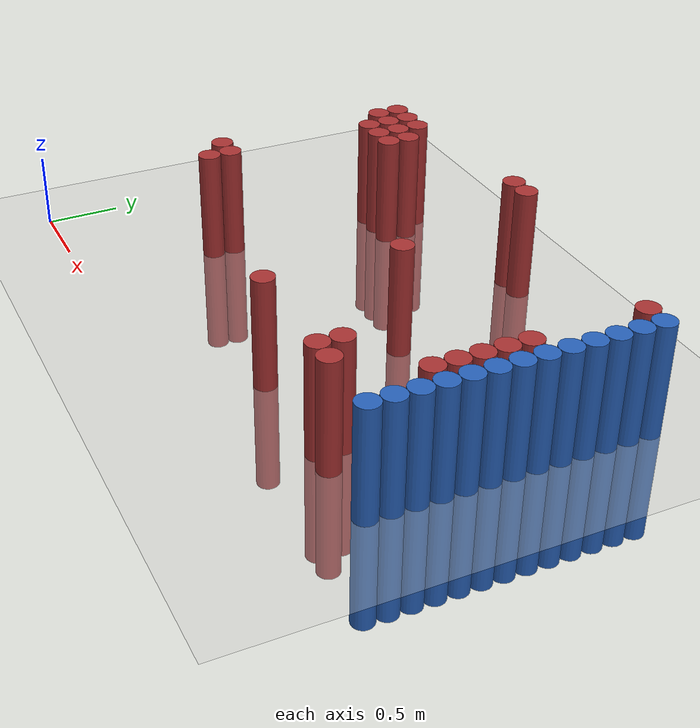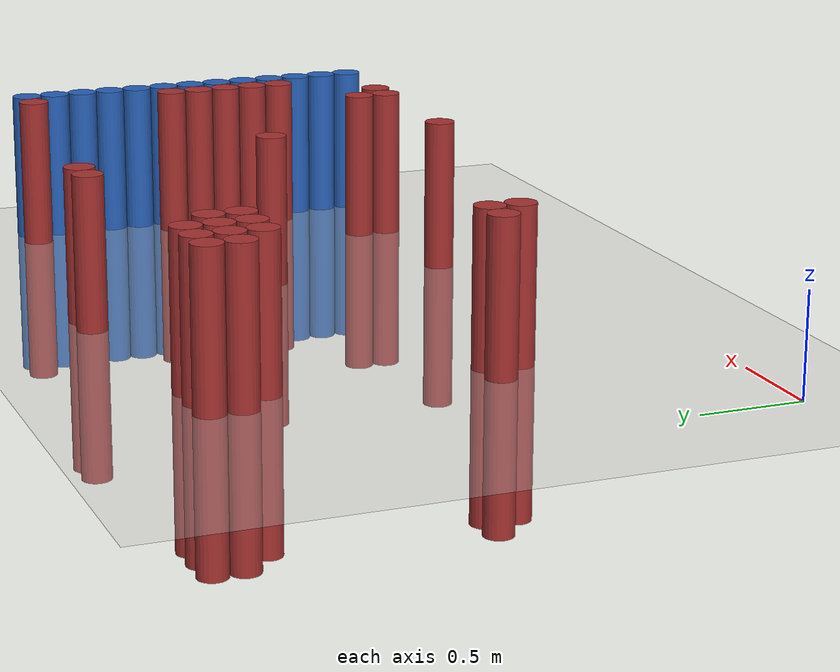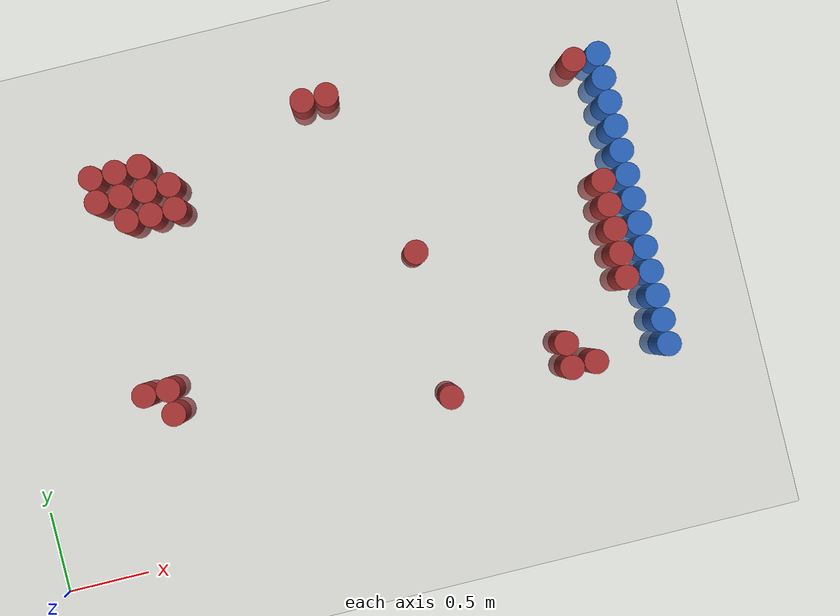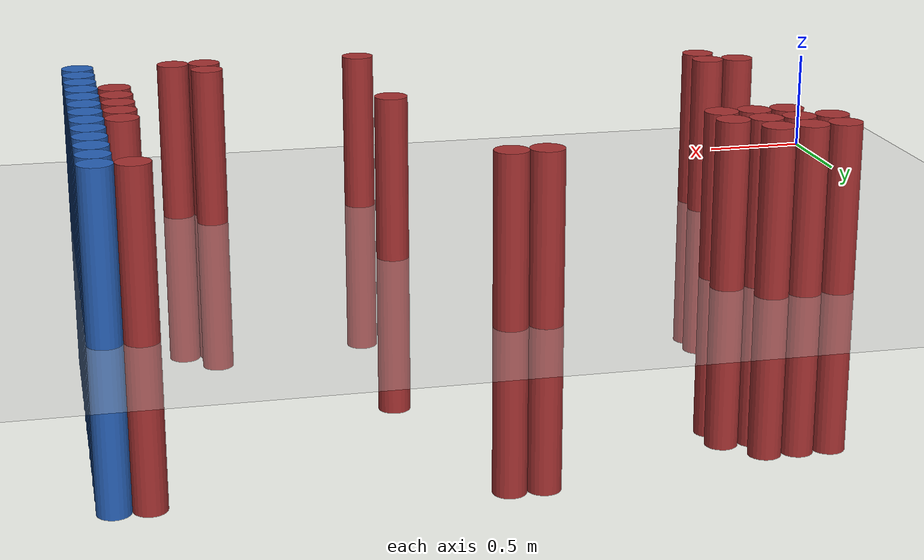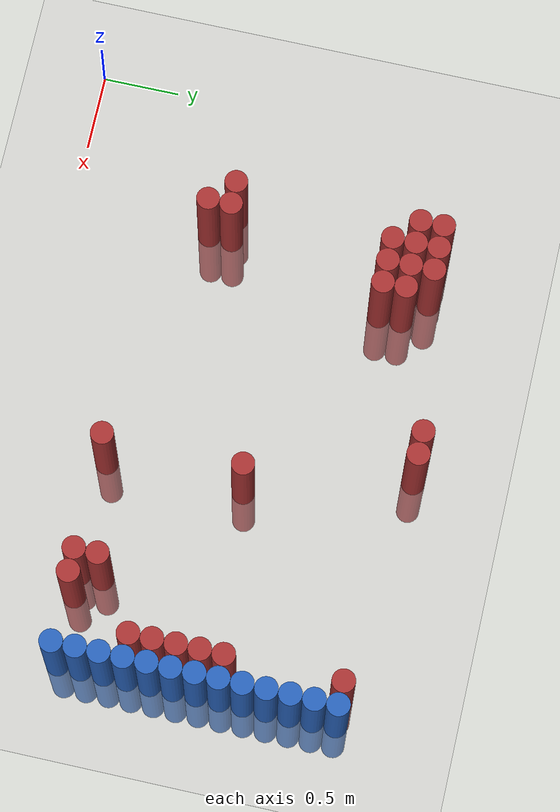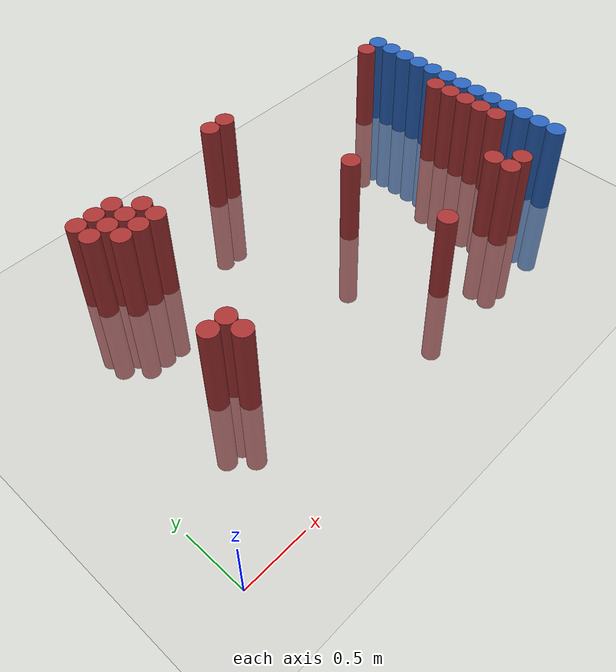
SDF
<sdf version="1.6">
 <world name="default">
  <model name="ground_plane">
   <static>1</static>
   <link name="link">
    <collision name="collision">
     <geometry><plane><normal>0 0 1</normal><size>100 100</size></plane></geometry>
     <surface><friction><ode><mu>100</mu><mu2>50</mu2></ode></friction></surface>
    </collision>
    <visual name="visual">
     <cast_shadows>0</cast_shadows>
     <geometry><plane><normal>0 0 1</normal><size>100 100</size></plane></geometry>
     <material>
      <script><uri>file://media/materials/scripts/gazebo.material</uri><name>Gazebo/Grey</name></script>
     </material>
    </visual>
   </link>
  </model>
  <model name="unit_cylinder_124">
   <static>1</static>
   <pose>3.925000 0.775000 0.000000 0.000000 0.000000 0.000000</pose>
   <link name="link">
    <inertial>
     <mass>1</mass>
     <inertia><ixx>0.145833</ixx><ixy>0</ixy><ixz>0</ixz><iyy>0.145833</iyy><iyz>0</iyz><izz>0.125</izz></inertia>
    </inertial>
    <collision name="collision">
     <geometry><cylinder><radius>0.075000</radius><length>1.5</length></cylinder></geometry>
    </collision>
    <visual name="visual">
     <geometry><cylinder><radius>0.075000</radius><length>1.5</length></cylinder></geometry>
     <material>
      <ambient>0.152000 0.379000 0.720000 1</ambient>
      <diffuse>0.152000 0.379000 0.720000 1</diffuse>
     </material>
     <material>
      <script><name>Gazebo/Grey</name><uri>file://media/materials/scripts/gazebo.material</uri></script>
     </material>
    </visual>
   </link>
  </model>
  <model name="unit_cylinder_126">
   <static>1</static>
   <pose>3.925000 0.925000 0.000000 0.000000 0.000000 0.000000</pose>
   <link name="link">
    <inertial>
     <mass>1</mass>
     <inertia><ixx>0.145833</ixx><ixy>0</ixy><ixz>0</ixz><iyy>0.145833</iyy><iyz>0</iyz><izz>0.125</izz></inertia>
    </inertial>
    <collision name="collision">
     <geometry><cylinder><radius>0.075000</radius><length>1.5</length></cylinder></geometry>
    </collision>
    <visual name="visual">
     <geometry><cylinder><radius>0.075000</radius><length>1.5</length></cylinder></geometry>
     <material>
      <ambient>0.152000 0.379000 0.720000 1</ambient>
      <diffuse>0.152000 0.379000 0.720000 1</diffuse>
     </material>
     <material>
      <script><name>Gazebo/Grey</name><uri>file://media/materials/scripts/gazebo.material</uri></script>
     </material>
    </visual>
   </link>
  </model>
  <model name="unit_cylinder_128">
   <static>1</static>
   <pose>3.925000 1.075000 0.000000 0.000000 0.000000 0.000000</pose>
   <link name="link">
    <inertial>
     <mass>1</mass>
     <inertia><ixx>0.145833</ixx><ixy>0</ixy><ixz>0</ixz><iyy>0.145833</iyy><iyz>0</iyz><izz>0.125</izz></inertia>
    </inertial>
    <collision name="collision">
     <geometry><cylinder><radius>0.075000</radius><length>1.5</length></cylinder></geometry>
    </collision>
    <visual name="visual">
     <geometry><cylinder><radius>0.075000</radius><length>1.5</length></cylinder></geometry>
     <material>
      <ambient>0.152000 0.379000 0.720000 1</ambient>
      <diffuse>0.152000 0.379000 0.720000 1</diffuse>
     </material>
     <material>
      <script><name>Gazebo/Grey</name><uri>file://media/materials/scripts/gazebo.material</uri></script>
     </material>
    </visual>
   </link>
  </model>
  <model name="unit_cylinder_130">
   <static>1</static>
   <pose>3.925000 1.225000 0.000000 0.000000 0.000000 0.000000</pose>
   <link name="link">
    <inertial>
     <mass>1</mass>
     <inertia><ixx>0.145833</ixx><ixy>0</ixy><ixz>0</ixz><iyy>0.145833</iyy><iyz>0</iyz><izz>0.125</izz></inertia>
    </inertial>
    <collision name="collision">
     <geometry><cylinder><radius>0.075000</radius><length>1.5</length></cylinder></geometry>
    </collision>
    <visual name="visual">
     <geometry><cylinder><radius>0.075000</radius><length>1.5</length></cylinder></geometry>
     <material>
      <ambient>0.152000 0.379000 0.720000 1</ambient>
      <diffuse>0.152000 0.379000 0.720000 1</diffuse>
     </material>
     <material>
      <script><name>Gazebo/Grey</name><uri>file://media/materials/scripts/gazebo.material</uri></script>
     </material>
    </visual>
   </link>
  </model>
  <model name="unit_cylinder_132">
   <static>1</static>
   <pose>3.925000 1.375000 0.000000 0.000000 0.000000 0.000000</pose>
   <link name="link">
    <inertial>
     <mass>1</mass>
     <inertia><ixx>0.145833</ixx><ixy>0</ixy><ixz>0</ixz><iyy>0.145833</iyy><iyz>0</iyz><izz>0.125</izz></inertia>
    </inertial>
    <collision name="collision">
     <geometry><cylinder><radius>0.075000</radius><length>1.5</length></cylinder></geometry>
    </collision>
    <visual name="visual">
     <geometry><cylinder><radius>0.075000</radius><length>1.5</length></cylinder></geometry>
     <material>
      <ambient>0.152000 0.379000 0.720000 1</ambient>
      <diffuse>0.152000 0.379000 0.720000 1</diffuse>
     </material>
     <material>
      <script><name>Gazebo/Grey</name><uri>file://media/materials/scripts/gazebo.material</uri></script>
     </material>
    </visual>
   </link>
  </model>
  <model name="unit_cylinder_134">
   <static>1</static>
   <pose>3.925000 1.525000 0.000000 0.000000 0.000000 0.000000</pose>
   <link name="link">
    <inertial>
     <mass>1</mass>
     <inertia><ixx>0.145833</ixx><ixy>0</ixy><ixz>0</ixz><iyy>0.145833</iyy><iyz>0</iyz><izz>0.125</izz></inertia>
    </inertial>
    <collision name="collision">
     <geometry><cylinder><radius>0.075000</radius><length>1.5</length></cylinder></geometry>
    </collision>
    <visual name="visual">
     <geometry><cylinder><radius>0.075000</radius><length>1.5</length></cylinder></geometry>
     <material>
      <ambient>0.152000 0.379000 0.720000 1</ambient>
      <diffuse>0.152000 0.379000 0.720000 1</diffuse>
     </material>
     <material>
      <script><name>Gazebo/Grey</name><uri>file://media/materials/scripts/gazebo.material</uri></script>
     </material>
    </visual>
   </link>
  </model>
  <model name="unit_cylinder_136">
   <static>1</static>
   <pose>3.925000 1.675000 0.000000 0.000000 0.000000 0.000000</pose>
   <link name="link">
    <inertial>
     <mass>1</mass>
     <inertia><ixx>0.145833</ixx><ixy>0</ixy><ixz>0</ixz><iyy>0.145833</iyy><iyz>0</iyz><izz>0.125</izz></inertia>
    </inertial>
    <collision name="collision">
     <geometry><cylinder><radius>0.075000</radius><length>1.5</length></cylinder></geometry>
    </collision>
    <visual name="visual">
     <geometry><cylinder><radius>0.075000</radius><length>1.5</length></cylinder></geometry>
     <material>
      <ambient>0.152000 0.379000 0.720000 1</ambient>
      <diffuse>0.152000 0.379000 0.720000 1</diffuse>
     </material>
     <material>
      <script><name>Gazebo/Grey</name><uri>file://media/materials/scripts/gazebo.material</uri></script>
     </material>
    </visual>
   </link>
  </model>
  <model name="unit_cylinder_138">
   <static>1</static>
   <pose>3.925000 1.825000 0.000000 0.000000 0.000000 0.000000</pose>
   <link name="link">
    <inertial>
     <mass>1</mass>
     <inertia><ixx>0.145833</ixx><ixy>0</ixy><ixz>0</ixz><iyy>0.145833</iyy><iyz>0</iyz><izz>0.125</izz></inertia>
    </inertial>
    <collision name="collision">
     <geometry><cylinder><radius>0.075000</radius><length>1.5</length></cylinder></geometry>
    </collision>
    <visual name="visual">
     <geometry><cylinder><radius>0.075000</radius><length>1.5</length></cylinder></geometry>
     <material>
      <ambient>0.152000 0.379000 0.720000 1</ambient>
      <diffuse>0.152000 0.379000 0.720000 1</diffuse>
     </material>
     <material>
      <script><name>Gazebo/Grey</name><uri>file://media/materials/scripts/gazebo.material</uri></script>
     </material>
    </visual>
   </link>
  </model>
  <model name="unit_cylinder_140">
   <static>1</static>
   <pose>3.925000 1.975000 0.000000 0.000000 0.000000 0.000000</pose>
   <link name="link">
    <inertial>
     <mass>1</mass>
     <inertia><ixx>0.145833</ixx><ixy>0</ixy><ixz>0</ixz><iyy>0.145833</iyy><iyz>0</iyz><izz>0.125</izz></inertia>
    </inertial>
    <collision name="collision">
     <geometry><cylinder><radius>0.075000</radius><length>1.5</length></cylinder></geometry>
    </collision>
    <visual name="visual">
     <geometry><cylinder><radius>0.075000</radius><length>1.5</length></cylinder></geometry>
     <material>
      <ambient>0.152000 0.379000 0.720000 1</ambient>
      <diffuse>0.152000 0.379000 0.720000 1</diffuse>
     </material>
     <material>
      <script><name>Gazebo/Grey</name><uri>file://media/materials/scripts/gazebo.material</uri></script>
     </material>
    </visual>
   </link>
  </model>
  <model name="unit_cylinder_142">
   <static>1</static>
   <pose>3.925000 2.125000 0.000000 0.000000 0.000000 0.000000</pose>
   <link name="link">
    <inertial>
     <mass>1</mass>
     <inertia><ixx>0.145833</ixx><ixy>0</ixy><ixz>0</ixz><iyy>0.145833</iyy><iyz>0</iyz><izz>0.125</izz></inertia>
    </inertial>
    <collision name="collision">
     <geometry><cylinder><radius>0.075000</radius><length>1.5</length></cylinder></geometry>
    </collision>
    <visual name="visual">
     <geometry><cylinder><radius>0.075000</radius><length>1.5</length></cylinder></geometry>
     <material>
      <ambient>0.152000 0.379000 0.720000 1</ambient>
      <diffuse>0.152000 0.379000 0.720000 1</diffuse>
     </material>
     <material>
      <script><name>Gazebo/Grey</name><uri>file://media/materials/scripts/gazebo.material</uri></script>
     </material>
    </visual>
   </link>
  </model>
  <model name="unit_cylinder_144">
   <static>1</static>
   <pose>3.925000 2.275000 0.000000 0.000000 0.000000 0.000000</pose>
   <link name="link">
    <inertial>
     <mass>1</mass>
     <inertia><ixx>0.145833</ixx><ixy>0</ixy><ixz>0</ixz><iyy>0.145833</iyy><iyz>0</iyz><izz>0.125</izz></inertia>
    </inertial>
    <collision name="collision">
     <geometry><cylinder><radius>0.075000</radius><length>1.5</length></cylinder></geometry>
    </collision>
    <visual name="visual">
     <geometry><cylinder><radius>0.075000</radius><length>1.5</length></cylinder></geometry>
     <material>
      <ambient>0.152000 0.379000 0.720000 1</ambient>
      <diffuse>0.152000 0.379000 0.720000 1</diffuse>
     </material>
     <material>
      <script><name>Gazebo/Grey</name><uri>file://media/materials/scripts/gazebo.material</uri></script>
     </material>
    </visual>
   </link>
  </model>
  <model name="unit_cylinder_146">
   <static>1</static>
   <pose>3.925000 2.425000 0.000000 0.000000 0.000000 0.000000</pose>
   <link name="link">
    <inertial>
     <mass>1</mass>
     <inertia><ixx>0.145833</ixx><ixy>0</ixy><ixz>0</ixz><iyy>0.145833</iyy><iyz>0</iyz><izz>0.125</izz></inertia>
    </inertial>
    <collision name="collision">
     <geometry><cylinder><radius>0.075000</radius><length>1.5</length></cylinder></geometry>
    </collision>
    <visual name="visual">
     <geometry><cylinder><radius>0.075000</radius><length>1.5</length></cylinder></geometry>
     <material>
      <ambient>0.152000 0.379000 0.720000 1</ambient>
      <diffuse>0.152000 0.379000 0.720000 1</diffuse>
     </material>
     <material>
      <script><name>Gazebo/Grey</name><uri>file://media/materials/scripts/gazebo.material</uri></script>
     </material>
    </visual>
   </link>
  </model>
  <model name="unit_cylinder_390">
   <static>1</static>
   <pose>0.775000 1.075000 0.000000 0.000000 0.000000 0.000000</pose>
   <link name="link">
    <inertial>
     <mass>1</mass>
     <inertia><ixx>0.145833</ixx><ixy>0</ixy><ixz>0</ixz><iyy>0.145833</iyy><iyz>0</iyz><izz>0.125</izz></inertia>
    </inertial>
    <collision name="collision">
     <geometry><cylinder><radius>0.075000</radius><length>1.5</length></cylinder></geometry>
    </collision>
    <visual name="visual">
     <geometry><cylinder><radius>0.075000</radius><length>1.5</length></cylinder></geometry>
     <material>
      <ambient>0.648000 0.192000 0.192000 1</ambient>
      <diffuse>0.648000 0.192000 0.192000 1</diffuse>
     </material>
     <material>
      <script><name>Gazebo/Grey</name><uri>file://media/materials/scripts/gazebo.material</uri></script>
     </material>
    </visual>
   </link>
  </model>
  <model name="unit_cylinder_391">
   <static>1</static>
   <pose>0.775000 2.275000 0.000000 0.000000 0.000000 0.000000</pose>
   <link name="link">
    <inertial>
     <mass>1</mass>
     <inertia><ixx>0.145833</ixx><ixy>0</ixy><ixz>0</ixz><iyy>0.145833</iyy><iyz>0</iyz><izz>0.125</izz></inertia>
    </inertial>
    <collision name="collision">
     <geometry><cylinder><radius>0.075000</radius><length>1.5</length></cylinder></geometry>
    </collision>
    <visual name="visual">
     <geometry><cylinder><radius>0.075000</radius><length>1.5</length></cylinder></geometry>
     <material>
      <ambient>0.648000 0.192000 0.192000 1</ambient>
      <diffuse>0.648000 0.192000 0.192000 1</diffuse>
     </material>
     <material>
      <script><name>Gazebo/Grey</name><uri>file://media/materials/scripts/gazebo.material</uri></script>
     </material>
    </visual>
   </link>
  </model>
  <model name="unit_cylinder_392">
   <static>1</static>
   <pose>0.775000 2.425000 0.000000 0.000000 0.000000 0.000000</pose>
   <link name="link">
    <inertial>
     <mass>1</mass>
     <inertia><ixx>0.145833</ixx><ixy>0</ixy><ixz>0</ixz><iyy>0.145833</iyy><iyz>0</iyz><izz>0.125</izz></inertia>
    </inertial>
    <collision name="collision">
     <geometry><cylinder><radius>0.075000</radius><length>1.5</length></cylinder></geometry>
    </collision>
    <visual name="visual">
     <geometry><cylinder><radius>0.075000</radius><length>1.5</length></cylinder></geometry>
     <material>
      <ambient>0.648000 0.192000 0.192000 1</ambient>
      <diffuse>0.648000 0.192000 0.192000 1</diffuse>
     </material>
     <material>
      <script><name>Gazebo/Grey</name><uri>file://media/materials/scripts/gazebo.material</uri></script>
     </material>
    </visual>
   </link>
  </model>
  <model name="unit_cylinder_397">
   <static>1</static>
   <pose>0.925000 0.925000 0.000000 0.000000 0.000000 0.000000</pose>
   <link name="link">
    <inertial>
     <mass>1</mass>
     <inertia><ixx>0.145833</ixx><ixy>0</ixy><ixz>0</ixz><iyy>0.145833</iyy><iyz>0</iyz><izz>0.125</izz></inertia>
    </inertial>
    <collision name="collision">
     <geometry><cylinder><radius>0.075000</radius><length>1.5</length></cylinder></geometry>
    </collision>
    <visual name="visual">
     <geometry><cylinder><radius>0.075000</radius><length>1.5</length></cylinder></geometry>
     <material>
      <ambient>0.648000 0.192000 0.192000 1</ambient>
      <diffuse>0.648000 0.192000 0.192000 1</diffuse>
     </material>
     <material>
      <script><name>Gazebo/Grey</name><uri>file://media/materials/scripts/gazebo.material</uri></script>
     </material>
    </visual>
   </link>
  </model>
  <model name="unit_cylinder_398">
   <static>1</static>
   <pose>0.925000 1.075000 0.000000 0.000000 0.000000 0.000000</pose>
   <link name="link">
    <inertial>
     <mass>1</mass>
     <inertia><ixx>0.145833</ixx><ixy>0</ixy><ixz>0</ixz><iyy>0.145833</iyy><iyz>0</iyz><izz>0.125</izz></inertia>
    </inertial>
    <collision name="collision">
     <geometry><cylinder><radius>0.075000</radius><length>1.5</length></cylinder></geometry>
    </collision>
    <visual name="visual">
     <geometry><cylinder><radius>0.075000</radius><length>1.5</length></cylinder></geometry>
     <material>
      <ambient>0.648000 0.192000 0.192000 1</ambient>
      <diffuse>0.648000 0.192000 0.192000 1</diffuse>
     </material>
     <material>
      <script><name>Gazebo/Grey</name><uri>file://media/materials/scripts/gazebo.material</uri></script>
     </material>
    </visual>
   </link>
  </model>
  <model name="unit_cylinder_399">
   <static>1</static>
   <pose>0.925000 2.125000 0.000000 0.000000 0.000000 0.000000</pose>
   <link name="link">
    <inertial>
     <mass>1</mass>
     <inertia><ixx>0.145833</ixx><ixy>0</ixy><ixz>0</ixz><iyy>0.145833</iyy><iyz>0</iyz><izz>0.125</izz></inertia>
    </inertial>
    <collision name="collision">
     <geometry><cylinder><radius>0.075000</radius><length>1.5</length></cylinder></geometry>
    </collision>
    <visual name="visual">
     <geometry><cylinder><radius>0.075000</radius><length>1.5</length></cylinder></geometry>
     <material>
      <ambient>0.648000 0.192000 0.192000 1</ambient>
      <diffuse>0.648000 0.192000 0.192000 1</diffuse>
     </material>
     <material>
      <script><name>Gazebo/Grey</name><uri>file://media/materials/scripts/gazebo.material</uri></script>
     </material>
    </visual>
   </link>
  </model>
  <model name="unit_cylinder_400">
   <static>1</static>
   <pose>0.925000 2.275000 0.000000 0.000000 0.000000 0.000000</pose>
   <link name="link">
    <inertial>
     <mass>1</mass>
     <inertia><ixx>0.145833</ixx><ixy>0</ixy><ixz>0</ixz><iyy>0.145833</iyy><iyz>0</iyz><izz>0.125</izz></inertia>
    </inertial>
    <collision name="collision">
     <geometry><cylinder><radius>0.075000</radius><length>1.5</length></cylinder></geometry>
    </collision>
    <visual name="visual">
     <geometry><cylinder><radius>0.075000</radius><length>1.5</length></cylinder></geometry>
     <material>
      <ambient>0.648000 0.192000 0.192000 1</ambient>
      <diffuse>0.648000 0.192000 0.192000 1</diffuse>
     </material>
     <material>
      <script><name>Gazebo/Grey</name><uri>file://media/materials/scripts/gazebo.material</uri></script>
     </material>
    </visual>
   </link>
  </model>
  <model name="unit_cylinder_401">
   <static>1</static>
   <pose>0.925000 2.425000 0.000000 0.000000 0.000000 0.000000</pose>
   <link name="link">
    <inertial>
     <mass>1</mass>
     <inertia><ixx>0.145833</ixx><ixy>0</ixy><ixz>0</ixz><iyy>0.145833</iyy><iyz>0</iyz><izz>0.125</izz></inertia>
    </inertial>
    <collision name="collision">
     <geometry><cylinder><radius>0.075000</radius><length>1.5</length></cylinder></geometry>
    </collision>
    <visual name="visual">
     <geometry><cylinder><radius>0.075000</radius><length>1.5</length></cylinder></geometry>
     <material>
      <ambient>0.648000 0.192000 0.192000 1</ambient>
      <diffuse>0.648000 0.192000 0.192000 1</diffuse>
     </material>
     <material>
      <script><name>Gazebo/Grey</name><uri>file://media/materials/scripts/gazebo.material</uri></script>
     </material>
    </visual>
   </link>
  </model>
  <model name="unit_cylinder_408">
   <static>1</static>
   <pose>1.075000 2.125000 0.000000 0.000000 0.000000 0.000000</pose>
   <link name="link">
    <inertial>
     <mass>1</mass>
     <inertia><ixx>0.145833</ixx><ixy>0</ixy><ixz>0</ixz><iyy>0.145833</iyy><iyz>0</iyz><izz>0.125</izz></inertia>
    </inertial>
    <collision name="collision">
     <geometry><cylinder><radius>0.075000</radius><length>1.5</length></cylinder></geometry>
    </collision>
    <visual name="visual">
     <geometry><cylinder><radius>0.075000</radius><length>1.5</length></cylinder></geometry>
     <material>
      <ambient>0.648000 0.192000 0.192000 1</ambient>
      <diffuse>0.648000 0.192000 0.192000 1</diffuse>
     </material>
     <material>
      <script><name>Gazebo/Grey</name><uri>file://media/materials/scripts/gazebo.material</uri></script>
     </material>
    </visual>
   </link>
  </model>
  <model name="unit_cylinder_409">
   <static>1</static>
   <pose>1.075000 2.275000 0.000000 0.000000 0.000000 0.000000</pose>
   <link name="link">
    <inertial>
     <mass>1</mass>
     <inertia><ixx>0.145833</ixx><ixy>0</ixy><ixz>0</ixz><iyy>0.145833</iyy><iyz>0</iyz><izz>0.125</izz></inertia>
    </inertial>
    <collision name="collision">
     <geometry><cylinder><radius>0.075000</radius><length>1.5</length></cylinder></geometry>
    </collision>
    <visual name="visual">
     <geometry><cylinder><radius>0.075000</radius><length>1.5</length></cylinder></geometry>
     <material>
      <ambient>0.648000 0.192000 0.192000 1</ambient>
      <diffuse>0.648000 0.192000 0.192000 1</diffuse>
     </material>
     <material>
      <script><name>Gazebo/Grey</name><uri>file://media/materials/scripts/gazebo.material</uri></script>
     </material>
    </visual>
   </link>
  </model>
  <model name="unit_cylinder_410">
   <static>1</static>
   <pose>1.075000 2.425000 0.000000 0.000000 0.000000 0.000000</pose>
   <link name="link">
    <inertial>
     <mass>1</mass>
     <inertia><ixx>0.145833</ixx><ixy>0</ixy><ixz>0</ixz><iyy>0.145833</iyy><iyz>0</iyz><izz>0.125</izz></inertia>
    </inertial>
    <collision name="collision">
     <geometry><cylinder><radius>0.075000</radius><length>1.5</length></cylinder></geometry>
    </collision>
    <visual name="visual">
     <geometry><cylinder><radius>0.075000</radius><length>1.5</length></cylinder></geometry>
     <material>
      <ambient>0.648000 0.192000 0.192000 1</ambient>
      <diffuse>0.648000 0.192000 0.192000 1</diffuse>
     </material>
     <material>
      <script><name>Gazebo/Grey</name><uri>file://media/materials/scripts/gazebo.material</uri></script>
     </material>
    </visual>
   </link>
  </model>
  <model name="unit_cylinder_419">
   <static>1</static>
   <pose>1.225000 2.125000 0.000000 0.000000 0.000000 0.000000</pose>
   <link name="link">
    <inertial>
     <mass>1</mass>
     <inertia><ixx>0.145833</ixx><ixy>0</ixy><ixz>0</ixz><iyy>0.145833</iyy><iyz>0</iyz><izz>0.125</izz></inertia>
    </inertial>
    <collision name="collision">
     <geometry><cylinder><radius>0.075000</radius><length>1.5</length></cylinder></geometry>
    </collision>
    <visual name="visual">
     <geometry><cylinder><radius>0.075000</radius><length>1.5</length></cylinder></geometry>
     <material>
      <ambient>0.648000 0.192000 0.192000 1</ambient>
      <diffuse>0.648000 0.192000 0.192000 1</diffuse>
     </material>
     <material>
      <script><name>Gazebo/Grey</name><uri>file://media/materials/scripts/gazebo.material</uri></script>
     </material>
    </visual>
   </link>
  </model>
  <model name="unit_cylinder_420">
   <static>1</static>
   <pose>1.225000 2.275000 0.000000 0.000000 0.000000 0.000000</pose>
   <link name="link">
    <inertial>
     <mass>1</mass>
     <inertia><ixx>0.145833</ixx><ixy>0</ixy><ixz>0</ixz><iyy>0.145833</iyy><iyz>0</iyz><izz>0.125</izz></inertia>
    </inertial>
    <collision name="collision">
     <geometry><cylinder><radius>0.075000</radius><length>1.5</length></cylinder></geometry>
    </collision>
    <visual name="visual">
     <geometry><cylinder><radius>0.075000</radius><length>1.5</length></cylinder></geometry>
     <material>
      <ambient>0.648000 0.192000 0.192000 1</ambient>
      <diffuse>0.648000 0.192000 0.192000 1</diffuse>
     </material>
     <material>
      <script><name>Gazebo/Grey</name><uri>file://media/materials/scripts/gazebo.material</uri></script>
     </material>
    </visual>
   </link>
  </model>
  <model name="unit_cylinder_441">
   <static>1</static>
   <pose>2.125000 2.575000 0.000000 0.000000 0.000000 0.000000</pose>
   <link name="link">
    <inertial>
     <mass>1</mass>
     <inertia><ixx>0.145833</ixx><ixy>0</ixy><ixz>0</ixz><iyy>0.145833</iyy><iyz>0</iyz><izz>0.125</izz></inertia>
    </inertial>
    <collision name="collision">
     <geometry><cylinder><radius>0.075000</radius><length>1.5</length></cylinder></geometry>
    </collision>
    <visual name="visual">
     <geometry><cylinder><radius>0.075000</radius><length>1.5</length></cylinder></geometry>
     <material>
      <ambient>0.648000 0.192000 0.192000 1</ambient>
      <diffuse>0.648000 0.192000 0.192000 1</diffuse>
     </material>
     <material>
      <script><name>Gazebo/Grey</name><uri>file://media/materials/scripts/gazebo.material</uri></script>
     </material>
    </visual>
   </link>
  </model>
  <model name="unit_cylinder_445">
   <static>1</static>
   <pose>2.275000 2.575000 0.000000 0.000000 0.000000 0.000000</pose>
   <link name="link">
    <inertial>
     <mass>1</mass>
     <inertia><ixx>0.145833</ixx><ixy>0</ixy><ixz>0</ixz><iyy>0.145833</iyy><iyz>0</iyz><izz>0.125</izz></inertia>
    </inertial>
    <collision name="collision">
     <geometry><cylinder><radius>0.075000</radius><length>1.5</length></cylinder></geometry>
    </collision>
    <visual name="visual">
     <geometry><cylinder><radius>0.075000</radius><length>1.5</length></cylinder></geometry>
     <material>
      <ambient>0.648000 0.192000 0.192000 1</ambient>
      <diffuse>0.648000 0.192000 0.192000 1</diffuse>
     </material>
     <material>
      <script><name>Gazebo/Grey</name><uri>file://media/materials/scripts/gazebo.material</uri></script>
     </material>
    </visual>
   </link>
  </model>
  <model name="unit_cylinder_451">
   <static>1</static>
   <pose>2.575000 0.625000 0.000000 0.000000 0.000000 0.000000</pose>
   <link name="link">
    <inertial>
     <mass>1</mass>
     <inertia><ixx>0.145833</ixx><ixy>0</ixy><ixz>0</ixz><iyy>0.145833</iyy><iyz>0</iyz><izz>0.125</izz></inertia>
    </inertial>
    <collision name="collision">
     <geometry><cylinder><radius>0.075000</radius><length>1.5</length></cylinder></geometry>
    </collision>
    <visual name="visual">
     <geometry><cylinder><radius>0.075000</radius><length>1.5</length></cylinder></geometry>
     <material>
      <ambient>0.648000 0.192000 0.192000 1</ambient>
      <diffuse>0.648000 0.192000 0.192000 1</diffuse>
     </material>
     <material>
      <script><name>Gazebo/Grey</name><uri>file://media/materials/scripts/gazebo.material</uri></script>
     </material>
    </visual>
   </link>
  </model>
  <model name="unit_cylinder_452">
   <static>1</static>
   <pose>2.575000 1.525000 0.000000 0.000000 0.000000 0.000000</pose>
   <link name="link">
    <inertial>
     <mass>1</mass>
     <inertia><ixx>0.145833</ixx><ixy>0</ixy><ixz>0</ixz><iyy>0.145833</iyy><iyz>0</iyz><izz>0.125</izz></inertia>
    </inertial>
    <collision name="collision">
     <geometry><cylinder><radius>0.075000</radius><length>1.5</length></cylinder></geometry>
    </collision>
    <visual name="visual">
     <geometry><cylinder><radius>0.075000</radius><length>1.5</length></cylinder></geometry>
     <material>
      <ambient>0.648000 0.192000 0.192000 1</ambient>
      <diffuse>0.648000 0.192000 0.192000 1</diffuse>
     </material>
     <material>
      <script><name>Gazebo/Grey</name><uri>file://media/materials/scripts/gazebo.material</uri></script>
     </material>
    </visual>
   </link>
  </model>
  <model name="unit_cylinder_476">
   <static>1</static>
   <pose>3.325000 0.625000 0.000000 0.000000 0.000000 0.000000</pose>
   <link name="link">
    <inertial>
     <mass>1</mass>
     <inertia><ixx>0.145833</ixx><ixy>0</ixy><ixz>0</ixz><iyy>0.145833</iyy><iyz>0</iyz><izz>0.125</izz></inertia>
    </inertial>
    <collision name="collision">
     <geometry><cylinder><radius>0.075000</radius><length>1.5</length></cylinder></geometry>
    </collision>
    <visual name="visual">
     <geometry><cylinder><radius>0.075000</radius><length>1.5</length></cylinder></geometry>
     <material>
      <ambient>0.648000 0.192000 0.192000 1</ambient>
      <diffuse>0.648000 0.192000 0.192000 1</diffuse>
     </material>
     <material>
      <script><name>Gazebo/Grey</name><uri>file://media/materials/scripts/gazebo.material</uri></script>
     </material>
    </visual>
   </link>
  </model>
  <model name="unit_cylinder_477">
   <static>1</static>
   <pose>3.325000 0.775000 0.000000 0.000000 0.000000 0.000000</pose>
   <link name="link">
    <inertial>
     <mass>1</mass>
     <inertia><ixx>0.145833</ixx><ixy>0</ixy><ixz>0</ixz><iyy>0.145833</iyy><iyz>0</iyz><izz>0.125</izz></inertia>
    </inertial>
    <collision name="collision">
     <geometry><cylinder><radius>0.075000</radius><length>1.5</length></cylinder></geometry>
    </collision>
    <visual name="visual">
     <geometry><cylinder><radius>0.075000</radius><length>1.5</length></cylinder></geometry>
     <material>
      <ambient>0.648000 0.192000 0.192000 1</ambient>
      <diffuse>0.648000 0.192000 0.192000 1</diffuse>
     </material>
     <material>
      <script><name>Gazebo/Grey</name><uri>file://media/materials/scripts/gazebo.material</uri></script>
     </material>
    </visual>
   </link>
  </model>
  <model name="unit_cylinder_483">
   <static>1</static>
   <pose>3.475000 0.625000 0.000000 0.000000 0.000000 0.000000</pose>
   <link name="link">
    <inertial>
     <mass>1</mass>
     <inertia><ixx>0.145833</ixx><ixy>0</ixy><ixz>0</ixz><iyy>0.145833</iyy><iyz>0</iyz><izz>0.125</izz></inertia>
    </inertial>
    <collision name="collision">
     <geometry><cylinder><radius>0.075000</radius><length>1.5</length></cylinder></geometry>
    </collision>
    <visual name="visual">
     <geometry><cylinder><radius>0.075000</radius><length>1.5</length></cylinder></geometry>
     <material>
      <ambient>0.648000 0.192000 0.192000 1</ambient>
      <diffuse>0.648000 0.192000 0.192000 1</diffuse>
     </material>
     <material>
      <script><name>Gazebo/Grey</name><uri>file://media/materials/scripts/gazebo.material</uri></script>
     </material>
    </visual>
   </link>
  </model>
  <model name="unit_cylinder_503">
   <static>1</static>
   <pose>3.775000 1.075000 0.000000 0.000000 0.000000 0.000000</pose>
   <link name="link">
    <inertial>
     <mass>1</mass>
     <inertia><ixx>0.145833</ixx><ixy>0</ixy><ixz>0</ixz><iyy>0.145833</iyy><iyz>0</iyz><izz>0.125</izz></inertia>
    </inertial>
    <collision name="collision">
     <geometry><cylinder><radius>0.075000</radius><length>1.5</length></cylinder></geometry>
    </collision>
    <visual name="visual">
     <geometry><cylinder><radius>0.075000</radius><length>1.5</length></cylinder></geometry>
     <material>
      <ambient>0.648000 0.192000 0.192000 1</ambient>
      <diffuse>0.648000 0.192000 0.192000 1</diffuse>
     </material>
     <material>
      <script><name>Gazebo/Grey</name><uri>file://media/materials/scripts/gazebo.material</uri></script>
     </material>
    </visual>
   </link>
  </model>
  <model name="unit_cylinder_504">
   <static>1</static>
   <pose>3.775000 1.225000 0.000000 0.000000 0.000000 0.000000</pose>
   <link name="link">
    <inertial>
     <mass>1</mass>
     <inertia><ixx>0.145833</ixx><ixy>0</ixy><ixz>0</ixz><iyy>0.145833</iyy><iyz>0</iyz><izz>0.125</izz></inertia>
    </inertial>
    <collision name="collision">
     <geometry><cylinder><radius>0.075000</radius><length>1.5</length></cylinder></geometry>
    </collision>
    <visual name="visual">
     <geometry><cylinder><radius>0.075000</radius><length>1.5</length></cylinder></geometry>
     <material>
      <ambient>0.648000 0.192000 0.192000 1</ambient>
      <diffuse>0.648000 0.192000 0.192000 1</diffuse>
     </material>
     <material>
      <script><name>Gazebo/Grey</name><uri>file://media/materials/scripts/gazebo.material</uri></script>
     </material>
    </visual>
   </link>
  </model>
  <model name="unit_cylinder_505">
   <static>1</static>
   <pose>3.775000 1.375000 0.000000 0.000000 0.000000 0.000000</pose>
   <link name="link">
    <inertial>
     <mass>1</mass>
     <inertia><ixx>0.145833</ixx><ixy>0</ixy><ixz>0</ixz><iyy>0.145833</iyy><iyz>0</iyz><izz>0.125</izz></inertia>
    </inertial>
    <collision name="collision">
     <geometry><cylinder><radius>0.075000</radius><length>1.5</length></cylinder></geometry>
    </collision>
    <visual name="visual">
     <geometry><cylinder><radius>0.075000</radius><length>1.5</length></cylinder></geometry>
     <material>
      <ambient>0.648000 0.192000 0.192000 1</ambient>
      <diffuse>0.648000 0.192000 0.192000 1</diffuse>
     </material>
     <material>
      <script><name>Gazebo/Grey</name><uri>file://media/materials/scripts/gazebo.material</uri></script>
     </material>
    </visual>
   </link>
  </model>
  <model name="unit_cylinder_506">
   <static>1</static>
   <pose>3.775000 1.525000 0.000000 0.000000 0.000000 0.000000</pose>
   <link name="link">
    <inertial>
     <mass>1</mass>
     <inertia><ixx>0.145833</ixx><ixy>0</ixy><ixz>0</ixz><iyy>0.145833</iyy><iyz>0</iyz><izz>0.125</izz></inertia>
    </inertial>
    <collision name="collision">
     <geometry><cylinder><radius>0.075000</radius><length>1.5</length></cylinder></geometry>
    </collision>
    <visual name="visual">
     <geometry><cylinder><radius>0.075000</radius><length>1.5</length></cylinder></geometry>
     <material>
      <ambient>0.648000 0.192000 0.192000 1</ambient>
      <diffuse>0.648000 0.192000 0.192000 1</diffuse>
     </material>
     <material>
      <script><name>Gazebo/Grey</name><uri>file://media/materials/scripts/gazebo.material</uri></script>
     </material>
    </visual>
   </link>
  </model>
  <model name="unit_cylinder_507">
   <static>1</static>
   <pose>3.775000 1.675000 0.000000 0.000000 0.000000 0.000000</pose>
   <link name="link">
    <inertial>
     <mass>1</mass>
     <inertia><ixx>0.145833</ixx><ixy>0</ixy><ixz>0</ixz><iyy>0.145833</iyy><iyz>0</iyz><izz>0.125</izz></inertia>
    </inertial>
    <collision name="collision">
     <geometry><cylinder><radius>0.075000</radius><length>1.5</length></cylinder></geometry>
    </collision>
    <visual name="visual">
     <geometry><cylinder><radius>0.075000</radius><length>1.5</length></cylinder></geometry>
     <material>
      <ambient>0.648000 0.192000 0.192000 1</ambient>
      <diffuse>0.648000 0.192000 0.192000 1</diffuse>
     </material>
     <material>
      <script><name>Gazebo/Grey</name><uri>file://media/materials/scripts/gazebo.material</uri></script>
     </material>
    </visual>
   </link>
  </model>
  <model name="unit_cylinder_508">
   <static>1</static>
   <pose>3.775000 2.425000 0.000000 0.000000 0.000000 0.000000</pose>
   <link name="link">
    <inertial>
     <mass>1</mass>
     <inertia><ixx>0.145833</ixx><ixy>0</ixy><ixz>0</ixz><iyy>0.145833</iyy><iyz>0</iyz><izz>0.125</izz></inertia>
    </inertial>
    <collision name="collision">
     <geometry><cylinder><radius>0.075000</radius><length>1.5</length></cylinder></geometry>
    </collision>
    <visual name="visual">
     <geometry><cylinder><radius>0.075000</radius><length>1.5</length></cylinder></geometry>
     <material>
      <ambient>0.648000 0.192000 0.192000 1</ambient>
      <diffuse>0.648000 0.192000 0.192000 1</diffuse>
     </material>
     <material>
      <script><name>Gazebo/Grey</name><uri>file://media/materials/scripts/gazebo.material</uri></script>
     </material>
    </visual>
   </link>
  </model>
  <model name="unit_cylinder_532">
   <static>1</static>
   <pose>3.925000 0.625000 0.000000 0.000000 0.000000 0.000000</pose>
   <link name="link">
    <inertial>
     <mass>1</mass>
     <inertia><ixx>0.145833</ixx><ixy>0</ixy><ixz>0</ixz><iyy>0.145833</iyy><iyz>0</iyz><izz>0.125</izz></inertia>
    </inertial>
    <collision name="collision">
     <geometry><cylinder><radius>0.075000</radius><length>1.5</length></cylinder></geometry>
    </collision>
    <visual name="visual">
     <geometry><cylinder><radius>0.075000</radius><length>1.5</length></cylinder></geometry>
     <material>
      <ambient>0.152000 0.379000 0.720000 1</ambient>
      <diffuse>0.152000 0.379000 0.720000 1</diffuse>
     </material>
     <material>
      <script><name>Gazebo/Grey</name><uri>file://media/materials/scripts/gazebo.material</uri></script>
     </material>
    </visual>
   </link>
  </model>
  <model name="unit_cylinder_533">
   <static>1</static>
   <pose>3.925000 0.775000 0.000000 0.000000 0.000000 0.000000</pose>
   <link name="link">
    <inertial>
     <mass>1</mass>
     <inertia><ixx>0.145833</ixx><ixy>0</ixy><ixz>0</ixz><iyy>0.145833</iyy><iyz>0</iyz><izz>0.125</izz></inertia>
    </inertial>
    <collision name="collision">
     <geometry><cylinder><radius>0.075000</radius><length>1.5</length></cylinder></geometry>
    </collision>
    <visual name="visual">
     <geometry><cylinder><radius>0.075000</radius><length>1.5</length></cylinder></geometry>
     <material>
      <ambient>0.152000 0.379000 0.720000 1</ambient>
      <diffuse>0.152000 0.379000 0.720000 1</diffuse>
     </material>
     <material>
      <script><name>Gazebo/Grey</name><uri>file://media/materials/scripts/gazebo.material</uri></script>
     </material>
    </visual>
   </link>
  </model>
  <model name="unit_cylinder_534">
   <static>1</static>
   <pose>3.925000 0.925000 0.000000 0.000000 0.000000 0.000000</pose>
   <link name="link">
    <inertial>
     <mass>1</mass>
     <inertia><ixx>0.145833</ixx><ixy>0</ixy><ixz>0</ixz><iyy>0.145833</iyy><iyz>0</iyz><izz>0.125</izz></inertia>
    </inertial>
    <collision name="collision">
     <geometry><cylinder><radius>0.075000</radius><length>1.5</length></cylinder></geometry>
    </collision>
    <visual name="visual">
     <geometry><cylinder><radius>0.075000</radius><length>1.5</length></cylinder></geometry>
     <material>
      <ambient>0.152000 0.379000 0.720000 1</ambient>
      <diffuse>0.152000 0.379000 0.720000 1</diffuse>
     </material>
     <material>
      <script><name>Gazebo/Grey</name><uri>file://media/materials/scripts/gazebo.material</uri></script>
     </material>
    </visual>
   </link>
  </model>
  <model name="unit_cylinder_535">
   <static>1</static>
   <pose>3.925000 1.075000 0.000000 0.000000 0.000000 0.000000</pose>
   <link name="link">
    <inertial>
     <mass>1</mass>
     <inertia><ixx>0.145833</ixx><ixy>0</ixy><ixz>0</ixz><iyy>0.145833</iyy><iyz>0</iyz><izz>0.125</izz></inertia>
    </inertial>
    <collision name="collision">
     <geometry><cylinder><radius>0.075000</radius><length>1.5</length></cylinder></geometry>
    </collision>
    <visual name="visual">
     <geometry><cylinder><radius>0.075000</radius><length>1.5</length></cylinder></geometry>
     <material>
      <ambient>0.152000 0.379000 0.720000 1</ambient>
      <diffuse>0.152000 0.379000 0.720000 1</diffuse>
     </material>
     <material>
      <script><name>Gazebo/Grey</name><uri>file://media/materials/scripts/gazebo.material</uri></script>
     </material>
    </visual>
   </link>
  </model>
  <model name="unit_cylinder_536">
   <static>1</static>
   <pose>3.925000 1.225000 0.000000 0.000000 0.000000 0.000000</pose>
   <link name="link">
    <inertial>
     <mass>1</mass>
     <inertia><ixx>0.145833</ixx><ixy>0</ixy><ixz>0</ixz><iyy>0.145833</iyy><iyz>0</iyz><izz>0.125</izz></inertia>
    </inertial>
    <collision name="collision">
     <geometry><cylinder><radius>0.075000</radius><length>1.5</length></cylinder></geometry>
    </collision>
    <visual name="visual">
     <geometry><cylinder><radius>0.075000</radius><length>1.5</length></cylinder></geometry>
     <material>
      <ambient>0.152000 0.379000 0.720000 1</ambient>
      <diffuse>0.152000 0.379000 0.720000 1</diffuse>
     </material>
     <material>
      <script><name>Gazebo/Grey</name><uri>file://media/materials/scripts/gazebo.material</uri></script>
     </material>
    </visual>
   </link>
  </model>
  <model name="unit_cylinder_537">
   <static>1</static>
   <pose>3.925000 1.375000 0.000000 0.000000 0.000000 0.000000</pose>
   <link name="link">
    <inertial>
     <mass>1</mass>
     <inertia><ixx>0.145833</ixx><ixy>0</ixy><ixz>0</ixz><iyy>0.145833</iyy><iyz>0</iyz><izz>0.125</izz></inertia>
    </inertial>
    <collision name="collision">
     <geometry><cylinder><radius>0.075000</radius><length>1.5</length></cylinder></geometry>
    </collision>
    <visual name="visual">
     <geometry><cylinder><radius>0.075000</radius><length>1.5</length></cylinder></geometry>
     <material>
      <ambient>0.152000 0.379000 0.720000 1</ambient>
      <diffuse>0.152000 0.379000 0.720000 1</diffuse>
     </material>
     <material>
      <script><name>Gazebo/Grey</name><uri>file://media/materials/scripts/gazebo.material</uri></script>
     </material>
    </visual>
   </link>
  </model>
  <model name="unit_cylinder_538">
   <static>1</static>
   <pose>3.925000 1.525000 0.000000 0.000000 0.000000 0.000000</pose>
   <link name="link">
    <inertial>
     <mass>1</mass>
     <inertia><ixx>0.145833</ixx><ixy>0</ixy><ixz>0</ixz><iyy>0.145833</iyy><iyz>0</iyz><izz>0.125</izz></inertia>
    </inertial>
    <collision name="collision">
     <geometry><cylinder><radius>0.075000</radius><length>1.5</length></cylinder></geometry>
    </collision>
    <visual name="visual">
     <geometry><cylinder><radius>0.075000</radius><length>1.5</length></cylinder></geometry>
     <material>
      <ambient>0.152000 0.379000 0.720000 1</ambient>
      <diffuse>0.152000 0.379000 0.720000 1</diffuse>
     </material>
     <material>
      <script><name>Gazebo/Grey</name><uri>file://media/materials/scripts/gazebo.material</uri></script>
     </material>
    </visual>
   </link>
  </model>
  <model name="unit_cylinder_539">
   <static>1</static>
   <pose>3.925000 1.675000 0.000000 0.000000 0.000000 0.000000</pose>
   <link name="link">
    <inertial>
     <mass>1</mass>
     <inertia><ixx>0.145833</ixx><ixy>0</ixy><ixz>0</ixz><iyy>0.145833</iyy><iyz>0</iyz><izz>0.125</izz></inertia>
    </inertial>
    <collision name="collision">
     <geometry><cylinder><radius>0.075000</radius><length>1.5</length></cylinder></geometry>
    </collision>
    <visual name="visual">
     <geometry><cylinder><radius>0.075000</radius><length>1.5</length></cylinder></geometry>
     <material>
      <ambient>0.152000 0.379000 0.720000 1</ambient>
      <diffuse>0.152000 0.379000 0.720000 1</diffuse>
     </material>
     <material>
      <script><name>Gazebo/Grey</name><uri>file://media/materials/scripts/gazebo.material</uri></script>
     </material>
    </visual>
   </link>
  </model>
  <model name="unit_cylinder_540">
   <static>1</static>
   <pose>3.925000 1.825000 0.000000 0.000000 0.000000 0.000000</pose>
   <link name="link">
    <inertial>
     <mass>1</mass>
     <inertia><ixx>0.145833</ixx><ixy>0</ixy><ixz>0</ixz><iyy>0.145833</iyy><iyz>0</iyz><izz>0.125</izz></inertia>
    </inertial>
    <collision name="collision">
     <geometry><cylinder><radius>0.075000</radius><length>1.5</length></cylinder></geometry>
    </collision>
    <visual name="visual">
     <geometry><cylinder><radius>0.075000</radius><length>1.5</length></cylinder></geometry>
     <material>
      <ambient>0.152000 0.379000 0.720000 1</ambient>
      <diffuse>0.152000 0.379000 0.720000 1</diffuse>
     </material>
     <material>
      <script><name>Gazebo/Grey</name><uri>file://media/materials/scripts/gazebo.material</uri></script>
     </material>
    </visual>
   </link>
  </model>
  <model name="unit_cylinder_541">
   <static>1</static>
   <pose>3.925000 1.975000 0.000000 0.000000 0.000000 0.000000</pose>
   <link name="link">
    <inertial>
     <mass>1</mass>
     <inertia><ixx>0.145833</ixx><ixy>0</ixy><ixz>0</ixz><iyy>0.145833</iyy><iyz>0</iyz><izz>0.125</izz></inertia>
    </inertial>
    <collision name="collision">
     <geometry><cylinder><radius>0.075000</radius><length>1.5</length></cylinder></geometry>
    </collision>
    <visual name="visual">
     <geometry><cylinder><radius>0.075000</radius><length>1.5</length></cylinder></geometry>
     <material>
      <ambient>0.152000 0.379000 0.720000 1</ambient>
      <diffuse>0.152000 0.379000 0.720000 1</diffuse>
     </material>
     <material>
      <script><name>Gazebo/Grey</name><uri>file://media/materials/scripts/gazebo.material</uri></script>
     </material>
    </visual>
   </link>
  </model>
  <model name="unit_cylinder_542">
   <static>1</static>
   <pose>3.925000 2.125000 0.000000 0.000000 0.000000 0.000000</pose>
   <link name="link">
    <inertial>
     <mass>1</mass>
     <inertia><ixx>0.145833</ixx><ixy>0</ixy><ixz>0</ixz><iyy>0.145833</iyy><iyz>0</iyz><izz>0.125</izz></inertia>
    </inertial>
    <collision name="collision">
     <geometry><cylinder><radius>0.075000</radius><length>1.5</length></cylinder></geometry>
    </collision>
    <visual name="visual">
     <geometry><cylinder><radius>0.075000</radius><length>1.5</length></cylinder></geometry>
     <material>
      <ambient>0.152000 0.379000 0.720000 1</ambient>
      <diffuse>0.152000 0.379000 0.720000 1</diffuse>
     </material>
     <material>
      <script><name>Gazebo/Grey</name><uri>file://media/materials/scripts/gazebo.material</uri></script>
     </material>
    </visual>
   </link>
  </model>
  <model name="unit_cylinder_543">
   <static>1</static>
   <pose>3.925000 2.275000 0.000000 0.000000 0.000000 0.000000</pose>
   <link name="link">
    <inertial>
     <mass>1</mass>
     <inertia><ixx>0.145833</ixx><ixy>0</ixy><ixz>0</ixz><iyy>0.145833</iyy><iyz>0</iyz><izz>0.125</izz></inertia>
    </inertial>
    <collision name="collision">
     <geometry><cylinder><radius>0.075000</radius><length>1.5</length></cylinder></geometry>
    </collision>
    <visual name="visual">
     <geometry><cylinder><radius>0.075000</radius><length>1.5</length></cylinder></geometry>
     <material>
      <ambient>0.152000 0.379000 0.720000 1</ambient>
      <diffuse>0.152000 0.379000 0.720000 1</diffuse>
     </material>
     <material>
      <script><name>Gazebo/Grey</name><uri>file://media/materials/scripts/gazebo.material</uri></script>
     </material>
    </visual>
   </link>
  </model>
  <model name="unit_cylinder_544">
   <static>1</static>
   <pose>3.925000 2.425000 0.000000 0.000000 0.000000 0.000000</pose>
   <link name="link">
    <inertial>
     <mass>1</mass>
     <inertia><ixx>0.145833</ixx><ixy>0</ixy><ixz>0</ixz><iyy>0.145833</iyy><iyz>0</iyz><izz>0.125</izz></inertia>
    </inertial>
    <collision name="collision">
     <geometry><cylinder><radius>0.075000</radius><length>1.5</length></cylinder></geometry>
    </collision>
    <visual name="visual">
     <geometry><cylinder><radius>0.075000</radius><length>1.5</length></cylinder></geometry>
     <material>
      <ambient>0.152000 0.379000 0.720000 1</ambient>
      <diffuse>0.152000 0.379000 0.720000 1</diffuse>
     </material>
     <material>
      <script><name>Gazebo/Grey</name><uri>file://media/materials/scripts/gazebo.material</uri></script>
     </material>
    </visual>
   </link>
  </model>
 </world>
</sdf>
